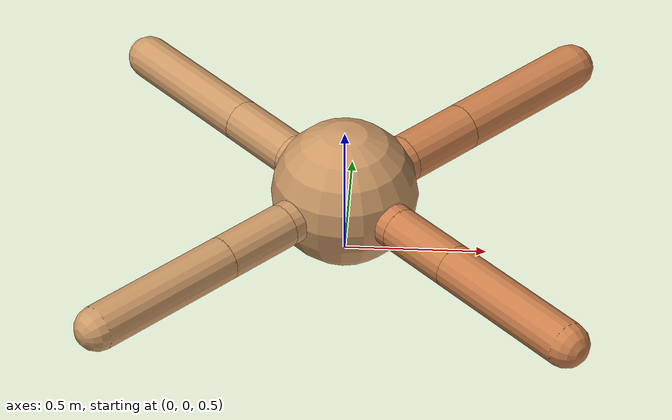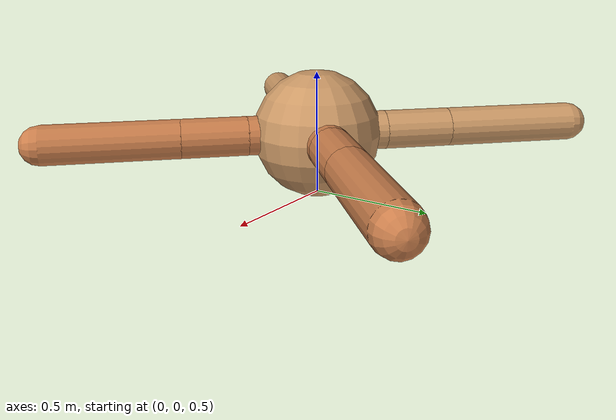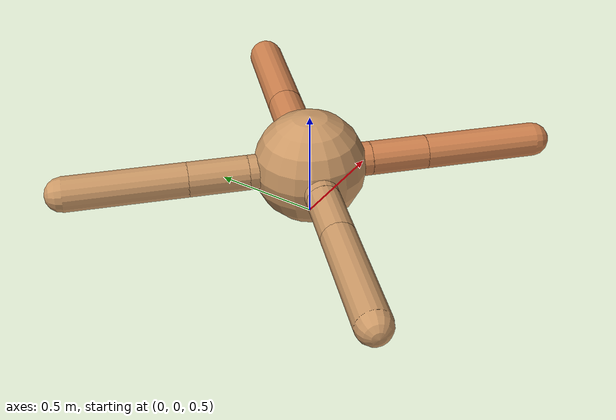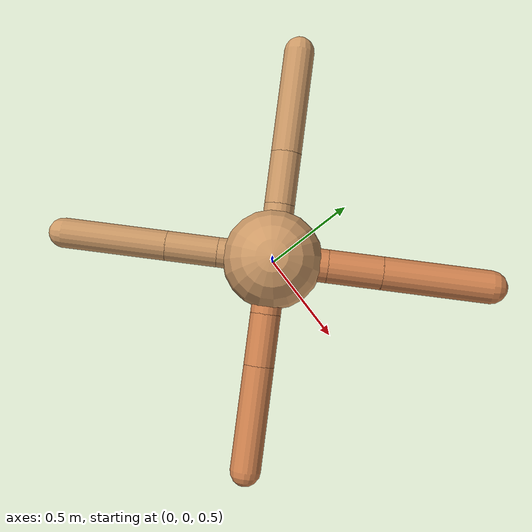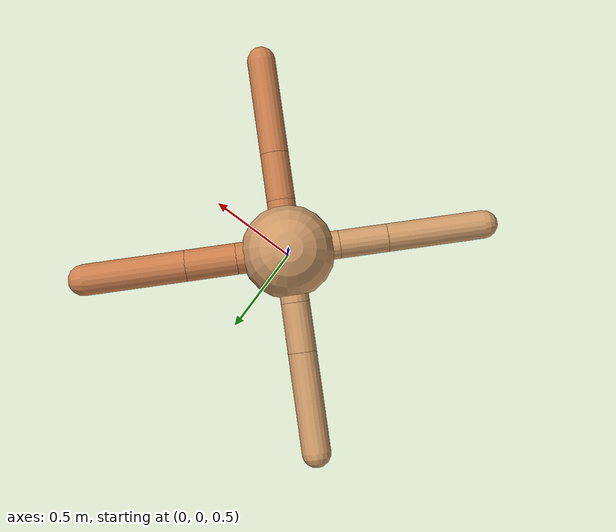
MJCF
<?xml version="1.0" ?>
<mujoco model="ant">

	<compiler angle="degree" coordinate="local" inertiafromgeom="true"/>

	<option integrator="RK4" timestep="0.01"/>

	<custom>

		<numeric data="0.0 0.0 0.55 1.0 0.0 0.0 0.0 0.0 1.0 0.0 -1.0 0.0 -1.0 0.0 1.0" name="init_qpos"/>

	</custom>

	<default>

		<joint armature="1" damping="1" limited="true"/>

		<geom conaffinity="0" condim="3" density="5.0" friction="1.5 0.1 0.1" margin="0.01" rgba="0.8 0.6 0.4 1"/>

	</default>

	<worldbody>

		<body name="torso" pos="0 0 0.75">

			<geom name="torso_geom" pos="0 0 0" size="0.25846445789129563" type="sphere"/>

			<!--joint armature="0" damping="0" limited="false" margin="0.01" name="root" pos="0 0 0" type="free"/-->

			<body name="front_left_leg" pos="0 0 0">

				<geom fromto="0 0 0 0.2 0.2 0" name="aux_1_geom" size="0.08676796986108742" type="capsule" rgba=".8 .5 .3 1"/>

				<body name="aux_1" pos="0.2 0.2 0">

					<joint axis="0 0 1" name="hip_1" pos="0.0 0.0 0.0" range="-40 40" type="hinge"/>

					<geom fromto="0 0 0 0.19864688130584124 0.19864688130584124 0" name="left_leg_geom" size="0.08676796986108742" type="capsule" rgba=".8 .5 .3 1"/>

					<body pos="0.19864688130584124 0.19864688130584124 0" name="front_left_foot">

						<joint axis="-1 1 0" name="ankle_1" pos="0.0 0.0 0.0" range="30 100" type="hinge"/>

						<geom fromto="0 0 0 0.3972937626116825 0.3972937626116825 0" name="left_ankle_geom" size="0.08676796986108742" type="capsule" rgba=".8 .5 .3 1"/>

					</body>

				</body>

			</body>

			<body name="front_right_leg" pos="0 0 0">

				<geom fromto="0 0 0 -0.2 0.2 0" name="aux_2_geom" size="0.07964993390283857" type="capsule"/>

				<body name="aux_2" pos="-0.2 0.2 0">

					<joint axis="0 0 1" name="hip_2" pos="0.0 0.0 0.0" range="-40 40" type="hinge"/>

					<geom fromto="0 0 0 -0.19223709053078344 0.19223709053078344 0" name="right_leg_geom" size="0.07964993390283857" type="capsule"/>

					<body pos="-0.19223709053078344 0.19223709053078344 0" name="front_right_foot">

						<joint axis="1 1 0" name="ankle_2" pos="0.0 0.0 0.0" range="-100 -30" type="hinge"/>

						<geom fromto="0 0 0 -0.3844741810615669 0.3844741810615669 0" name="right_ankle_geom" size="0.07964993390283857" type="capsule"/>

					</body>

				</body>

			</body>

			<body name="left_back_leg" pos="0 0 0">

				<geom fromto="0 0 0 -0.2 -0.2 0" name="aux_3_geom" size="0.07762935818643237" type="capsule"/>

				<body name="aux_3" pos="-0.2 -0.2 0">

					<joint axis="0 0 1" name="hip_3" pos="0.0 0.0 0.0" range="-40 40" type="hinge"/>

					<geom fromto="0 0 0 -0.1880618439212432 -0.1880618439212432 0" name="back_leg_geom" size="0.07762935818643237" type="capsule"/>

					<body pos="-0.1880618439212432 -0.1880618439212432 0" name="left_back_foot">

						<joint axis="-1 1 0" name="ankle_3" pos="0.0 0.0 0.0" range="-100 -30" type="hinge"/>

						<geom fromto="0 0 0 -0.3761236878424864 -0.3761236878424864 0" name="third_ankle_geom" size="0.07762935818643237" type="capsule"/>

					</body>

				</body>

			</body>

			<body name="right_back_leg" pos="0 0 0">

				<geom fromto="0 0 0 0.2 -0.2 0" name="aux_4_geom" size="0.0788468489667349" type="capsule" rgba=".8 .5 .3 1"/>

				<body name="aux_4" pos="0.2 -0.2 0">

					<joint axis="0 0 1" name="hip_4" pos="0.0 0.0 0.0" range="-40 40" type="hinge"/>

					<geom fromto="0 0 0 0.18668544687915611 -0.18668544687915611 0" name="rightback_leg_geom" size="0.0788468489667349" type="capsule" rgba=".8 .5 .3 1"/>

					<body pos="0.18668544687915611 -0.18668544687915611 0" name="right_back_foot">

						<joint axis="1 1 0" name="ankle_4" pos="0.0 0.0 0.0" range="30 100" type="hinge"/>

						<geom fromto="0 0 0 0.37337089375831223 -0.37337089375831223 0" name="fourth_ankle_geom" size="0.0788468489667349" type="capsule" rgba=".8 .5 .3 1"/>

					</body>

				</body>

			</body>

		</body>

	</worldbody>

	<actuator>

		<motor ctrllimited="true" ctrlrange="-1.0 1.0" joint="hip_4" gear="150"/>

		<motor ctrllimited="true" ctrlrange="-1.0 1.0" joint="ankle_4" gear="150"/>

		<motor ctrllimited="true" ctrlrange="-1.0 1.0" joint="hip_1" gear="150"/>

		<motor ctrllimited="true" ctrlrange="-1.0 1.0" joint="ankle_1" gear="150"/>

		<motor ctrllimited="true" ctrlrange="-1.0 1.0" joint="hip_2" gear="150"/>

		<motor ctrllimited="true" ctrlrange="-1.0 1.0" joint="ankle_2" gear="150"/>

		<motor ctrllimited="true" ctrlrange="-1.0 1.0" joint="hip_3" gear="150"/>

		<motor ctrllimited="true" ctrlrange="-1.0 1.0" joint="ankle_3" gear="150"/>

	</actuator>

</mujoco>
